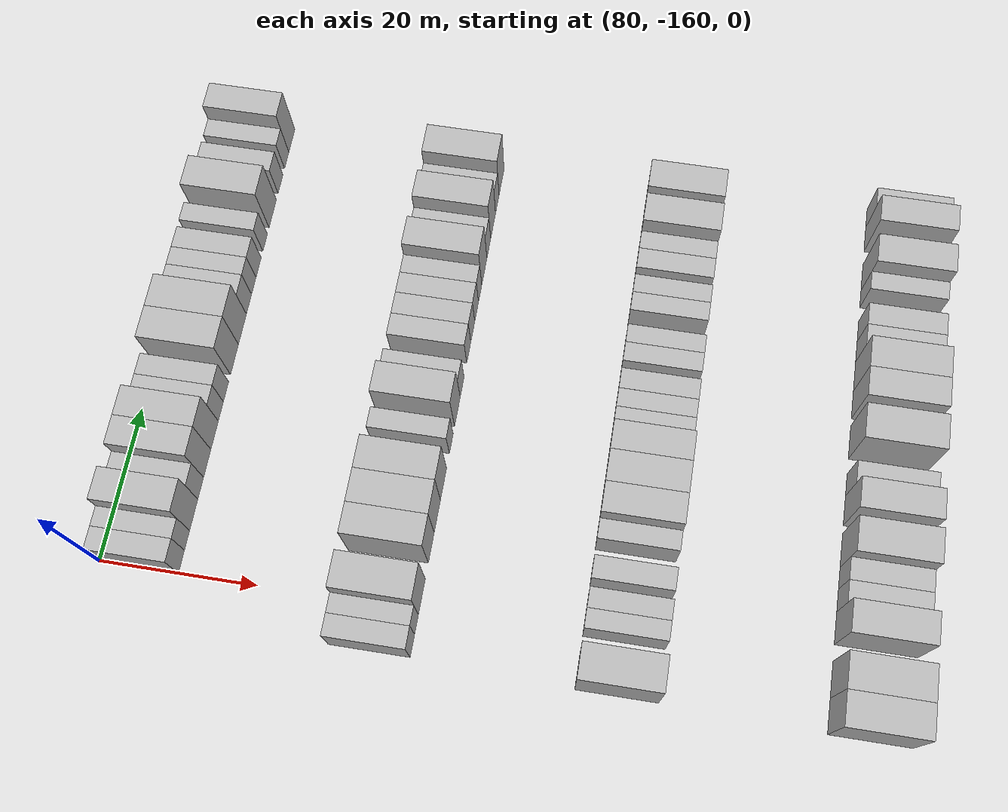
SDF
<sdf version="1.6">
 <world name="default">
  <model name="building_535">
   <static>1</static>
   <pose>85.0000 -158.5072 0 0.000000 0.000000 0.000000</pose>
   <link name="link">
    <pose>0 0 3.00 0 0 0</pose>
    <collision name="collision"><geometry><box><size>10.0000 2.9138 6.0000</size></box></geometry></collision>
    <visual name="visual">
     <cast_shadows>0</cast_shadows>
     <geometry><box><size>10.0000 2.9138 6.0000</size></box></geometry>
     <material>
      <script>
       <uri>model://HANNAS_wall/materials/scripts</uri>
       <uri>model://HANNAS_wall/materials/textures</uri>
       <name>vrc/HANNAS_wall</name>
      </script>
     </material>
    </visual>
   </link>
  </model>
  <model name="building_536">
   <static>1</static>
   <pose>85.0000 -155.7948 0 0.000000 0.000000 0.000000</pose>
   <link name="link">
    <pose>0 0 3.00 0 0 0</pose>
    <collision name="collision"><geometry><box><size>10.0000 2.5110 6.0000</size></box></geometry></collision>
    <visual name="visual">
     <cast_shadows>0</cast_shadows>
     <geometry><box><size>10.0000 2.5110 6.0000</size></box></geometry>
     <material>
      <script>
       <uri>model://HANNAS_wall/materials/scripts</uri>
       <uri>model://HANNAS_wall/materials/textures</uri>
       <name>vrc/HANNAS_wall</name>
      </script>
     </material>
    </visual>
   </link>
  </model>
  <model name="building_537">
   <static>1</static>
   <pose>85.0000 -152.4979 0 0.000000 0.000000 0.000000</pose>
   <link name="link">
    <pose>0 0 4.50 0 0 0</pose>
    <collision name="collision"><geometry><box><size>10.0000 4.0827 9.0000</size></box></geometry></collision>
    <visual name="visual">
     <cast_shadows>0</cast_shadows>
     <geometry><box><size>10.0000 4.0827 9.0000</size></box></geometry>
     <material>
      <script>
       <uri>model://HANNAS_wall/materials/scripts</uri>
       <uri>model://HANNAS_wall/materials/textures</uri>
       <name>vrc/HANNAS_wall</name>
      </script>
     </material>
    </visual>
   </link>
  </model>
  <model name="building_538">
   <static>1</static>
   <pose>85.0000 -149.0277 0 0.000000 0.000000 0.000000</pose>
   <link name="link">
    <pose>0 0 3.00 0 0 0</pose>
    <collision name="collision"><geometry><box><size>10.0000 2.8578 6.0000</size></box></geometry></collision>
    <visual name="visual">
     <cast_shadows>0</cast_shadows>
     <geometry><box><size>10.0000 2.8578 6.0000</size></box></geometry>
     <material>
      <script>
       <uri>model://HANNAS_wall/materials/scripts</uri>
       <uri>model://HANNAS_wall/materials/textures</uri>
       <name>vrc/HANNAS_wall</name>
      </script>
     </material>
    </visual>
   </link>
  </model>
  <model name="building_539">
   <static>1</static>
   <pose>85.0000 -145.7312 0 0.000000 0.000000 0.000000</pose>
   <link name="link">
    <pose>0 0 4.50 0 0 0</pose>
    <collision name="collision"><geometry><box><size>10.0000 3.7350 9.0000</size></box></geometry></collision>
    <visual name="visual">
     <cast_shadows>0</cast_shadows>
     <geometry><box><size>10.0000 3.7350 9.0000</size></box></geometry>
     <material>
      <script>
       <uri>model://HANNAS_wall/materials/scripts</uri>
       <uri>model://HANNAS_wall/materials/textures</uri>
       <name>vrc/HANNAS_wall</name>
      </script>
     </material>
    </visual>
   </link>
  </model>
  <model name="building_540">
   <static>1</static>
   <pose>85.0000 -141.9311 0 0.000000 0.000000 0.000000</pose>
   <link name="link">
    <pose>0 0 4.50 0 0 0</pose>
    <collision name="collision"><geometry><box><size>10.0000 3.8652 9.0000</size></box></geometry></collision>
    <visual name="visual">
     <cast_shadows>0</cast_shadows>
     <geometry><box><size>10.0000 3.8652 9.0000</size></box></geometry>
     <material>
      <script>
       <uri>model://HANNAS_wall/materials/scripts</uri>
       <uri>model://HANNAS_wall/materials/textures</uri>
       <name>vrc/HANNAS_wall</name>
      </script>
     </material>
    </visual>
   </link>
  </model>
  <model name="building_541">
   <static>1</static>
   <pose>85.0000 -138.6671 0 0.000000 0.000000 0.000000</pose>
   <link name="link">
    <pose>0 0 3.00 0 0 0</pose>
    <collision name="collision"><geometry><box><size>10.0000 2.6629 6.0000</size></box></geometry></collision>
    <visual name="visual">
     <cast_shadows>0</cast_shadows>
     <geometry><box><size>10.0000 2.6629 6.0000</size></box></geometry>
     <material>
      <script>
       <uri>model://HANNAS_wall/materials/scripts</uri>
       <uri>model://HANNAS_wall/materials/textures</uri>
       <name>vrc/HANNAS_wall</name>
      </script>
     </material>
    </visual>
   </link>
  </model>
  <model name="building_542">
   <static>1</static>
   <pose>85.0000 -135.9375 0 0.000000 0.000000 0.000000</pose>
   <link name="link">
    <pose>0 0 3.00 0 0 0</pose>
    <collision name="collision"><geometry><box><size>10.0000 2.7964 6.0000</size></box></geometry></collision>
    <visual name="visual">
     <cast_shadows>0</cast_shadows>
     <geometry><box><size>10.0000 2.7964 6.0000</size></box></geometry>
     <material>
      <script>
       <uri>model://HANNAS_wall/materials/scripts</uri>
       <uri>model://HANNAS_wall/materials/textures</uri>
       <name>vrc/HANNAS_wall</name>
      </script>
     </material>
    </visual>
   </link>
  </model>
  <model name="building_543">
   <static>1</static>
   <pose>85.0000 -131.3920 0 0.000000 0.000000 0.000000</pose>
   <link name="link">
    <pose>0 0 4.50 0 0 0</pose>
    <collision name="collision"><geometry><box><size>10.0000 4.2945 9.0000</size></box></geometry></collision>
    <visual name="visual">
     <cast_shadows>0</cast_shadows>
     <geometry><box><size>10.0000 4.2945 9.0000</size></box></geometry>
     <material>
      <script>
       <uri>model://HANNAS_wall/materials/scripts</uri>
       <uri>model://HANNAS_wall/materials/textures</uri>
       <name>vrc/HANNAS_wall</name>
      </script>
     </material>
    </visual>
   </link>
  </model>
  <model name="building_544">
   <static>1</static>
   <pose>85.0000 -127.0500 0 0.000000 0.000000 0.000000</pose>
   <link name="link">
    <pose>0 0 4.50 0 0 0</pose>
    <collision name="collision"><geometry><box><size>10.0000 4.3894 9.0000</size></box></geometry></collision>
    <visual name="visual">
     <cast_shadows>0</cast_shadows>
     <geometry><box><size>10.0000 4.3894 9.0000</size></box></geometry>
     <material>
      <script>
       <uri>model://HANNAS_wall/materials/scripts</uri>
       <uri>model://HANNAS_wall/materials/textures</uri>
       <name>vrc/HANNAS_wall</name>
      </script>
     </material>
    </visual>
   </link>
  </model>
  <model name="building_545">
   <static>1</static>
   <pose>85.0000 -123.4032 0 0.000000 0.000000 0.000000</pose>
   <link name="link">
    <pose>0 0 3.00 0 0 0</pose>
    <collision name="collision"><geometry><box><size>10.0000 2.9044 6.0000</size></box></geometry></collision>
    <visual name="visual">
     <cast_shadows>0</cast_shadows>
     <geometry><box><size>10.0000 2.9044 6.0000</size></box></geometry>
     <material>
      <script>
       <uri>model://HANNAS_wall/materials/scripts</uri>
       <uri>model://HANNAS_wall/materials/textures</uri>
       <name>vrc/HANNAS_wall</name>
      </script>
     </material>
    </visual>
   </link>
  </model>
  <model name="building_546">
   <static>1</static>
   <pose>85.0000 -120.6891 0 0.000000 0.000000 0.000000</pose>
   <link name="link">
    <pose>0 0 3.00 0 0 0</pose>
    <collision name="collision"><geometry><box><size>10.0000 2.5237 6.0000</size></box></geometry></collision>
    <visual name="visual">
     <cast_shadows>0</cast_shadows>
     <geometry><box><size>10.0000 2.5237 6.0000</size></box></geometry>
     <material>
      <script>
       <uri>model://HANNAS_wall/materials/scripts</uri>
       <uri>model://HANNAS_wall/materials/textures</uri>
       <name>vrc/HANNAS_wall</name>
      </script>
     </material>
    </visual>
   </link>
  </model>
  <model name="building_547">
   <static>1</static>
   <pose>85.0000 -117.9544 0 0.000000 0.000000 0.000000</pose>
   <link name="link">
    <pose>0 0 3.00 0 0 0</pose>
    <collision name="collision"><geometry><box><size>10.0000 2.9457 6.0000</size></box></geometry></collision>
    <visual name="visual">
     <cast_shadows>0</cast_shadows>
     <geometry><box><size>10.0000 2.9457 6.0000</size></box></geometry>
     <material>
      <script>
       <uri>model://HANNAS_wall/materials/scripts</uri>
       <uri>model://HANNAS_wall/materials/textures</uri>
       <name>vrc/HANNAS_wall</name>
      </script>
     </material>
    </visual>
   </link>
  </model>
  <model name="building_548">
   <static>1</static>
   <pose>85.0000 -114.1785 0 0.000000 0.000000 0.000000</pose>
   <link name="link">
    <pose>0 0 3.00 0 0 0</pose>
    <collision name="collision"><geometry><box><size>10.0000 2.6060 6.0000</size></box></geometry></collision>
    <visual name="visual">
     <cast_shadows>0</cast_shadows>
     <geometry><box><size>10.0000 2.6060 6.0000</size></box></geometry>
     <material>
      <script>
       <uri>model://HANNAS_wall/materials/scripts</uri>
       <uri>model://HANNAS_wall/materials/textures</uri>
       <name>vrc/HANNAS_wall</name>
      </script>
     </material>
    </visual>
   </link>
  </model>
  <model name="building_549">
   <static>1</static>
   <pose>85.0000 -109.6983 0 0.000000 0.000000 0.000000</pose>
   <link name="link">
    <pose>0 0 4.50 0 0 0</pose>
    <collision name="collision"><geometry><box><size>10.0000 4.3545 9.0000</size></box></geometry></collision>
    <visual name="visual">
     <cast_shadows>0</cast_shadows>
     <geometry><box><size>10.0000 4.3545 9.0000</size></box></geometry>
     <material>
      <script>
       <uri>model://HANNAS_wall/materials/scripts</uri>
       <uri>model://HANNAS_wall/materials/textures</uri>
       <name>vrc/HANNAS_wall</name>
      </script>
     </material>
    </visual>
   </link>
  </model>
  <model name="building_550">
   <static>1</static>
   <pose>85.0000 -105.0601 0 0.000000 0.000000 0.000000</pose>
   <link name="link">
    <pose>0 0 3.00 0 0 0</pose>
    <collision name="collision"><geometry><box><size>10.0000 2.9219 6.0000</size></box></geometry></collision>
    <visual name="visual">
     <cast_shadows>0</cast_shadows>
     <geometry><box><size>10.0000 2.9219 6.0000</size></box></geometry>
     <material>
      <script>
       <uri>model://HANNAS_wall/materials/scripts</uri>
       <uri>model://HANNAS_wall/materials/textures</uri>
       <name>vrc/HANNAS_wall</name>
      </script>
     </material>
    </visual>
   </link>
  </model>
  <model name="building_551">
   <static>1</static>
   <pose>85.0000 -101.2850 0 0.000000 0.000000 0.000000</pose>
   <link name="link">
    <pose>0 0 3.00 0 0 0</pose>
    <collision name="collision"><geometry><box><size>10.0000 2.6282 6.0000</size></box></geometry></collision>
    <visual name="visual">
     <cast_shadows>0</cast_shadows>
     <geometry><box><size>10.0000 2.6282 6.0000</size></box></geometry>
     <material>
      <script>
       <uri>model://HANNAS_wall/materials/scripts</uri>
       <uri>model://HANNAS_wall/materials/textures</uri>
       <name>vrc/HANNAS_wall</name>
      </script>
     </material>
    </visual>
   </link>
  </model>
  <model name="building_552">
   <static>1</static>
   <pose>85.0000 -98.1222 0 0.000000 0.000000 0.000000</pose>
   <link name="link">
    <pose>0 0 4.50 0 0 0</pose>
    <collision name="collision"><geometry><box><size>10.0000 3.6974 9.0000</size></box></geometry></collision>
    <visual name="visual">
     <cast_shadows>0</cast_shadows>
     <geometry><box><size>10.0000 3.6974 9.0000</size></box></geometry>
     <material>
      <script>
       <uri>model://HANNAS_wall/materials/scripts</uri>
       <uri>model://HANNAS_wall/materials/textures</uri>
       <name>vrc/HANNAS_wall</name>
      </script>
     </material>
    </visual>
   </link>
  </model>
  <model name="building_766">
   <static>1</static>
   <pose>115.0000 -164.1862 0 0.000000 0.000000 0.000000</pose>
   <link name="link">
    <pose>0 0 3.00 0 0 0</pose>
    <collision name="collision"><geometry><box><size>10.0000 2.7592 6.0000</size></box></geometry></collision>
    <visual name="visual">
     <cast_shadows>0</cast_shadows>
     <geometry><box><size>10.0000 2.7592 6.0000</size></box></geometry>
     <material>
      <script>
       <uri>model://HANNAS_wall/materials/scripts</uri>
       <uri>model://HANNAS_wall/materials/textures</uri>
       <name>vrc/HANNAS_wall</name>
      </script>
     </material>
    </visual>
   </link>
  </model>
  <model name="building_767">
   <static>1</static>
   <pose>115.0000 -161.5995 0 0.000000 0.000000 0.000000</pose>
   <link name="link">
    <pose>0 0 3.00 0 0 0</pose>
    <collision name="collision"><geometry><box><size>10.0000 2.4142 6.0000</size></box></geometry></collision>
    <visual name="visual">
     <cast_shadows>0</cast_shadows>
     <geometry><box><size>10.0000 2.4142 6.0000</size></box></geometry>
     <material>
      <script>
       <uri>model://HANNAS_wall/materials/scripts</uri>
       <uri>model://HANNAS_wall/materials/textures</uri>
       <name>vrc/HANNAS_wall</name>
      </script>
     </material>
    </visual>
   </link>
  </model>
  <model name="building_768">
   <static>1</static>
   <pose>115.0000 -158.1685 0 0.000000 0.000000 0.000000</pose>
   <link name="link">
    <pose>0 0 4.50 0 0 0</pose>
    <collision name="collision"><geometry><box><size>10.0000 4.4480 9.0000</size></box></geometry></collision>
    <visual name="visual">
     <cast_shadows>0</cast_shadows>
     <geometry><box><size>10.0000 4.4480 9.0000</size></box></geometry>
     <material>
      <script>
       <uri>model://HANNAS_wall/materials/scripts</uri>
       <uri>model://HANNAS_wall/materials/textures</uri>
       <name>vrc/HANNAS_wall</name>
      </script>
     </material>
    </visual>
   </link>
  </model>
  <model name="building_769">
   <static>1</static>
   <pose>115.0000 -152.0086 0 0.000000 0.000000 0.000000</pose>
   <link name="link">
    <pose>0 0 4.50 0 0 0</pose>
    <collision name="collision"><geometry><box><size>10.0000 3.8717 9.0000</size></box></geometry></collision>
    <visual name="visual">
     <cast_shadows>0</cast_shadows>
     <geometry><box><size>10.0000 3.8717 9.0000</size></box></geometry>
     <material>
      <script>
       <uri>model://HANNAS_wall/materials/scripts</uri>
       <uri>model://HANNAS_wall/materials/textures</uri>
       <name>vrc/HANNAS_wall</name>
      </script>
     </material>
    </visual>
   </link>
  </model>
  <model name="building_770">
   <static>1</static>
   <pose>115.0000 -147.9625 0 0.000000 0.000000 0.000000</pose>
   <link name="link">
    <pose>0 0 4.50 0 0 0</pose>
    <collision name="collision"><geometry><box><size>10.0000 4.2205 9.0000</size></box></geometry></collision>
    <visual name="visual">
     <cast_shadows>0</cast_shadows>
     <geometry><box><size>10.0000 4.2205 9.0000</size></box></geometry>
     <material>
      <script>
       <uri>model://HANNAS_wall/materials/scripts</uri>
       <uri>model://HANNAS_wall/materials/textures</uri>
       <name>vrc/HANNAS_wall</name>
      </script>
     </material>
    </visual>
   </link>
  </model>
  <model name="building_771">
   <static>1</static>
   <pose>115.0000 -143.7628 0 0.000000 0.000000 0.000000</pose>
   <link name="link">
    <pose>0 0 4.50 0 0 0</pose>
    <collision name="collision"><geometry><box><size>10.0000 4.1790 9.0000</size></box></geometry></collision>
    <visual name="visual">
     <cast_shadows>0</cast_shadows>
     <geometry><box><size>10.0000 4.1790 9.0000</size></box></geometry>
     <material>
      <script>
       <uri>model://HANNAS_wall/materials/scripts</uri>
       <uri>model://HANNAS_wall/materials/textures</uri>
       <name>vrc/HANNAS_wall</name>
      </script>
     </material>
    </visual>
   </link>
  </model>
  <model name="building_772">
   <static>1</static>
   <pose>115.0000 -138.3508 0 0.000000 0.000000 0.000000</pose>
   <link name="link">
    <pose>0 0 3.00 0 0 0</pose>
    <collision name="collision"><geometry><box><size>10.0000 2.6451 6.0000</size></box></geometry></collision>
    <visual name="visual">
     <cast_shadows>0</cast_shadows>
     <geometry><box><size>10.0000 2.6451 6.0000</size></box></geometry>
     <material>
      <script>
       <uri>model://HANNAS_wall/materials/scripts</uri>
       <uri>model://HANNAS_wall/materials/textures</uri>
       <name>vrc/HANNAS_wall</name>
      </script>
     </material>
    </visual>
   </link>
  </model>
  <model name="building_773">
   <static>1</static>
   <pose>115.0000 -134.0194 0 0.000000 0.000000 0.000000</pose>
   <link name="link">
    <pose>0 0 4.50 0 0 0</pose>
    <collision name="collision"><geometry><box><size>10.0000 4.0176 9.0000</size></box></geometry></collision>
    <visual name="visual">
     <cast_shadows>0</cast_shadows>
     <geometry><box><size>10.0000 4.0176 9.0000</size></box></geometry>
     <material>
      <script>
       <uri>model://HANNAS_wall/materials/scripts</uri>
       <uri>model://HANNAS_wall/materials/textures</uri>
       <name>vrc/HANNAS_wall</name>
      </script>
     </material>
    </visual>
   </link>
  </model>
  <model name="building_774">
   <static>1</static>
   <pose>115.0000 -130.5886 0 0.000000 0.000000 0.000000</pose>
   <link name="link">
    <pose>0 0 3.00 0 0 0</pose>
    <collision name="collision"><geometry><box><size>10.0000 2.8439 6.0000</size></box></geometry></collision>
    <visual name="visual">
     <cast_shadows>0</cast_shadows>
     <geometry><box><size>10.0000 2.8439 6.0000</size></box></geometry>
     <material>
      <script>
       <uri>model://HANNAS_wall/materials/scripts</uri>
       <uri>model://HANNAS_wall/materials/textures</uri>
       <name>vrc/HANNAS_wall</name>
      </script>
     </material>
    </visual>
   </link>
  </model>
  <model name="building_775">
   <static>1</static>
   <pose>115.0000 -125.6881 0 0.000000 0.000000 0.000000</pose>
   <link name="link">
    <pose>0 0 3.00 0 0 0</pose>
    <collision name="collision"><geometry><box><size>10.0000 2.9572 6.0000</size></box></geometry></collision>
    <visual name="visual">
     <cast_shadows>0</cast_shadows>
     <geometry><box><size>10.0000 2.9572 6.0000</size></box></geometry>
     <material>
      <script>
       <uri>model://HANNAS_wall/materials/scripts</uri>
       <uri>model://HANNAS_wall/materials/textures</uri>
       <name>vrc/HANNAS_wall</name>
      </script>
     </material>
    </visual>
   </link>
  </model>
  <model name="building_776">
   <static>1</static>
   <pose>115.0000 -122.7307 0 0.000000 0.000000 0.000000</pose>
   <link name="link">
    <pose>0 0 3.00 0 0 0</pose>
    <collision name="collision"><geometry><box><size>10.0000 2.9577 6.0000</size></box></geometry></collision>
    <visual name="visual">
     <cast_shadows>0</cast_shadows>
     <geometry><box><size>10.0000 2.9577 6.0000</size></box></geometry>
     <material>
      <script>
       <uri>model://HANNAS_wall/materials/scripts</uri>
       <uri>model://HANNAS_wall/materials/textures</uri>
       <name>vrc/HANNAS_wall</name>
      </script>
     </material>
    </visual>
   </link>
  </model>
  <model name="building_777">
   <static>1</static>
   <pose>115.0000 -119.8198 0 0.000000 0.000000 0.000000</pose>
   <link name="link">
    <pose>0 0 3.00 0 0 0</pose>
    <collision name="collision"><geometry><box><size>10.0000 2.8641 6.0000</size></box></geometry></collision>
    <visual name="visual">
     <cast_shadows>0</cast_shadows>
     <geometry><box><size>10.0000 2.8641 6.0000</size></box></geometry>
     <material>
      <script>
       <uri>model://HANNAS_wall/materials/scripts</uri>
       <uri>model://HANNAS_wall/materials/textures</uri>
       <name>vrc/HANNAS_wall</name>
      </script>
     </material>
    </visual>
   </link>
  </model>
  <model name="building_778">
   <static>1</static>
   <pose>115.0000 -117.1265 0 0.000000 0.000000 0.000000</pose>
   <link name="link">
    <pose>0 0 3.00 0 0 0</pose>
    <collision name="collision"><geometry><box><size>10.0000 2.5224 6.0000</size></box></geometry></collision>
    <visual name="visual">
     <cast_shadows>0</cast_shadows>
     <geometry><box><size>10.0000 2.5224 6.0000</size></box></geometry>
     <material>
      <script>
       <uri>model://HANNAS_wall/materials/scripts</uri>
       <uri>model://HANNAS_wall/materials/textures</uri>
       <name>vrc/HANNAS_wall</name>
      </script>
     </material>
    </visual>
   </link>
  </model>
  <model name="building_779">
   <static>1</static>
   <pose>115.0000 -113.8625 0 0.000000 0.000000 0.000000</pose>
   <link name="link">
    <pose>0 0 4.50 0 0 0</pose>
    <collision name="collision"><geometry><box><size>10.0000 4.0056 9.0000</size></box></geometry></collision>
    <visual name="visual">
     <cast_shadows>0</cast_shadows>
     <geometry><box><size>10.0000 4.0056 9.0000</size></box></geometry>
     <material>
      <script>
       <uri>model://HANNAS_wall/materials/scripts</uri>
       <uri>model://HANNAS_wall/materials/textures</uri>
       <name>vrc/HANNAS_wall</name>
      </script>
     </material>
    </visual>
   </link>
  </model>
  <model name="building_780">
   <static>1</static>
   <pose>115.0000 -110.3740 0 0.000000 0.000000 0.000000</pose>
   <link name="link">
    <pose>0 0 3.00 0 0 0</pose>
    <collision name="collision"><geometry><box><size>10.0000 2.9715 6.0000</size></box></geometry></collision>
    <visual name="visual">
     <cast_shadows>0</cast_shadows>
     <geometry><box><size>10.0000 2.9715 6.0000</size></box></geometry>
     <material>
      <script>
       <uri>model://HANNAS_wall/materials/scripts</uri>
       <uri>model://HANNAS_wall/materials/textures</uri>
       <name>vrc/HANNAS_wall</name>
      </script>
     </material>
    </visual>
   </link>
  </model>
  <model name="building_781">
   <static>1</static>
   <pose>115.0000 -106.9439 0 0.000000 0.000000 0.000000</pose>
   <link name="link">
    <pose>0 0 4.50 0 0 0</pose>
    <collision name="collision"><geometry><box><size>10.0000 3.8886 9.0000</size></box></geometry></collision>
    <visual name="visual">
     <cast_shadows>0</cast_shadows>
     <geometry><box><size>10.0000 3.8886 9.0000</size></box></geometry>
     <material>
      <script>
       <uri>model://HANNAS_wall/materials/scripts</uri>
       <uri>model://HANNAS_wall/materials/textures</uri>
       <name>vrc/HANNAS_wall</name>
      </script>
     </material>
    </visual>
   </link>
  </model>
  <model name="building_782">
   <static>1</static>
   <pose>115.0000 -103.5748 0 0.000000 0.000000 0.000000</pose>
   <link name="link">
    <pose>0 0 3.00 0 0 0</pose>
    <collision name="collision"><geometry><box><size>10.0000 2.8497 6.0000</size></box></geometry></collision>
    <visual name="visual">
     <cast_shadows>0</cast_shadows>
     <geometry><box><size>10.0000 2.8497 6.0000</size></box></geometry>
     <material>
      <script>
       <uri>model://HANNAS_wall/materials/scripts</uri>
       <uri>model://HANNAS_wall/materials/textures</uri>
       <name>vrc/HANNAS_wall</name>
      </script>
     </material>
    </visual>
   </link>
  </model>
  <model name="building_783">
   <static>1</static>
   <pose>115.0000 -100.0939 0 0.000000 0.000000 0.000000</pose>
   <link name="link">
    <pose>0 0 4.50 0 0 0</pose>
    <collision name="collision"><geometry><box><size>10.0000 4.1121 9.0000</size></box></geometry></collision>
    <visual name="visual">
     <cast_shadows>0</cast_shadows>
     <geometry><box><size>10.0000 4.1121 9.0000</size></box></geometry>
     <material>
      <script>
       <uri>model://HANNAS_wall/materials/scripts</uri>
       <uri>model://HANNAS_wall/materials/textures</uri>
       <name>vrc/HANNAS_wall</name>
      </script>
     </material>
    </visual>
   </link>
  </model>
  <model name="building_986">
   <static>1</static>
   <pose>145.0000 -164.0540 0 0.000000 0.000000 0.000000</pose>
   <link name="link">
    <pose>0 0 4.50 0 0 0</pose>
    <collision name="collision"><geometry><box><size>10.0000 4.3704 9.0000</size></box></geometry></collision>
    <visual name="visual">
     <cast_shadows>0</cast_shadows>
     <geometry><box><size>10.0000 4.3704 9.0000</size></box></geometry>
     <material>
      <script>
       <uri>model://HANNAS_wall/materials/scripts</uri>
       <uri>model://HANNAS_wall/materials/textures</uri>
       <name>vrc/HANNAS_wall</name>
      </script>
     </material>
    </visual>
   </link>
  </model>
  <model name="building_987">
   <static>1</static>
   <pose>145.0000 -158.6610 0 0.000000 0.000000 0.000000</pose>
   <link name="link">
    <pose>0 0 3.00 0 0 0</pose>
    <collision name="collision"><geometry><box><size>10.0000 2.4157 6.0000</size></box></geometry></collision>
    <visual name="visual">
     <cast_shadows>0</cast_shadows>
     <geometry><box><size>10.0000 2.4157 6.0000</size></box></geometry>
     <material>
      <script>
       <uri>model://HANNAS_wall/materials/scripts</uri>
       <uri>model://HANNAS_wall/materials/textures</uri>
       <name>vrc/HANNAS_wall</name>
      </script>
     </material>
    </visual>
   </link>
  </model>
  <model name="building_988">
   <static>1</static>
   <pose>145.0000 -156.1902 0 0.000000 0.000000 0.000000</pose>
   <link name="link">
    <pose>0 0 3.00 0 0 0</pose>
    <collision name="collision"><geometry><box><size>10.0000 2.5257 6.0000</size></box></geometry></collision>
    <visual name="visual">
     <cast_shadows>0</cast_shadows>
     <geometry><box><size>10.0000 2.5257 6.0000</size></box></geometry>
     <material>
      <script>
       <uri>model://HANNAS_wall/materials/scripts</uri>
       <uri>model://HANNAS_wall/materials/textures</uri>
       <name>vrc/HANNAS_wall</name>
      </script>
     </material>
    </visual>
   </link>
  </model>
  <model name="building_989">
   <static>1</static>
   <pose>145.0000 -152.5129 0 0.000000 0.000000 0.000000</pose>
   <link name="link">
    <pose>0 0 3.00 0 0 0</pose>
    <collision name="collision"><geometry><box><size>10.0000 2.8289 6.0000</size></box></geometry></collision>
    <visual name="visual">
     <cast_shadows>0</cast_shadows>
     <geometry><box><size>10.0000 2.8289 6.0000</size></box></geometry>
     <material>
      <script>
       <uri>model://HANNAS_wall/materials/scripts</uri>
       <uri>model://HANNAS_wall/materials/textures</uri>
       <name>vrc/HANNAS_wall</name>
      </script>
     </material>
    </visual>
   </link>
  </model>
  <model name="building_990">
   <static>1</static>
   <pose>145.0000 -147.8416 0 0.000000 0.000000 0.000000</pose>
   <link name="link">
    <pose>0 0 3.00 0 0 0</pose>
    <collision name="collision"><geometry><box><size>10.0000 2.5139 6.0000</size></box></geometry></collision>
    <visual name="visual">
     <cast_shadows>0</cast_shadows>
     <geometry><box><size>10.0000 2.5139 6.0000</size></box></geometry>
     <material>
      <script>
       <uri>model://HANNAS_wall/materials/scripts</uri>
       <uri>model://HANNAS_wall/materials/textures</uri>
       <name>vrc/HANNAS_wall</name>
      </script>
     </material>
    </visual>
   </link>
  </model>
  <model name="building_991">
   <static>1</static>
   <pose>145.0000 -144.6636 0 0.000000 0.000000 0.000000</pose>
   <link name="link">
    <pose>0 0 4.50 0 0 0</pose>
    <collision name="collision"><geometry><box><size>10.0000 3.8421 9.0000</size></box></geometry></collision>
    <visual name="visual">
     <cast_shadows>0</cast_shadows>
     <geometry><box><size>10.0000 3.8421 9.0000</size></box></geometry>
     <material>
      <script>
       <uri>model://HANNAS_wall/materials/scripts</uri>
       <uri>model://HANNAS_wall/materials/textures</uri>
       <name>vrc/HANNAS_wall</name>
      </script>
     </material>
    </visual>
   </link>
  </model>
  <model name="building_992">
   <static>1</static>
   <pose>145.0000 -140.7213 0 0.000000 0.000000 0.000000</pose>
   <link name="link">
    <pose>0 0 4.50 0 0 0</pose>
    <collision name="collision"><geometry><box><size>10.0000 4.0425 9.0000</size></box></geometry></collision>
    <visual name="visual">
     <cast_shadows>0</cast_shadows>
     <geometry><box><size>10.0000 4.0425 9.0000</size></box></geometry>
     <material>
      <script>
       <uri>model://HANNAS_wall/materials/scripts</uri>
       <uri>model://HANNAS_wall/materials/textures</uri>
       <name>vrc/HANNAS_wall</name>
      </script>
     </material>
    </visual>
   </link>
  </model>
  <model name="building_993">
   <static>1</static>
   <pose>145.0000 -136.8151 0 0.000000 0.000000 0.000000</pose>
   <link name="link">
    <pose>0 0 4.50 0 0 0</pose>
    <collision name="collision"><geometry><box><size>10.0000 3.7699 9.0000</size></box></geometry></collision>
    <visual name="visual">
     <cast_shadows>0</cast_shadows>
     <geometry><box><size>10.0000 3.7699 9.0000</size></box></geometry>
     <material>
      <script>
       <uri>model://HANNAS_wall/materials/scripts</uri>
       <uri>model://HANNAS_wall/materials/textures</uri>
       <name>vrc/HANNAS_wall</name>
      </script>
     </material>
    </visual>
   </link>
  </model>
  <model name="building_994">
   <static>1</static>
   <pose>145.0000 -133.5557 0 0.000000 0.000000 0.000000</pose>
   <link name="link">
    <pose>0 0 3.00 0 0 0</pose>
    <collision name="collision"><geometry><box><size>10.0000 2.7488 6.0000</size></box></geometry></collision>
    <visual name="visual">
     <cast_shadows>0</cast_shadows>
     <geometry><box><size>10.0000 2.7488 6.0000</size></box></geometry>
     <material>
      <script>
       <uri>model://HANNAS_wall/materials/scripts</uri>
       <uri>model://HANNAS_wall/materials/textures</uri>
       <name>vrc/HANNAS_wall</name>
      </script>
     </material>
    </visual>
   </link>
  </model>
  <model name="building_995">
   <static>1</static>
   <pose>145.0000 -130.9614 0 0.000000 0.000000 0.000000</pose>
   <link name="link">
    <pose>0 0 3.00 0 0 0</pose>
    <collision name="collision"><geometry><box><size>10.0000 2.4399 6.0000</size></box></geometry></collision>
    <visual name="visual">
     <cast_shadows>0</cast_shadows>
     <geometry><box><size>10.0000 2.4399 6.0000</size></box></geometry>
     <material>
      <script>
       <uri>model://HANNAS_wall/materials/scripts</uri>
       <uri>model://HANNAS_wall/materials/textures</uri>
       <name>vrc/HANNAS_wall</name>
      </script>
     </material>
    </visual>
   </link>
  </model>
  <model name="building_996">
   <static>1</static>
   <pose>145.0000 -128.3869 0 0.000000 0.000000 0.000000</pose>
   <link name="link">
    <pose>0 0 3.00 0 0 0</pose>
    <collision name="collision"><geometry><box><size>10.0000 2.7090 6.0000</size></box></geometry></collision>
    <visual name="visual">
     <cast_shadows>0</cast_shadows>
     <geometry><box><size>10.0000 2.7090 6.0000</size></box></geometry>
     <material>
      <script>
       <uri>model://HANNAS_wall/materials/scripts</uri>
       <uri>model://HANNAS_wall/materials/textures</uri>
       <name>vrc/HANNAS_wall</name>
      </script>
     </material>
    </visual>
   </link>
  </model>
  <model name="building_997">
   <static>1</static>
   <pose>145.0000 -124.7494 0 0.000000 0.000000 0.000000</pose>
   <link name="link">
    <pose>0 0 3.00 0 0 0</pose>
    <collision name="collision"><geometry><box><size>10.0000 2.5659 6.0000</size></box></geometry></collision>
    <visual name="visual">
     <cast_shadows>0</cast_shadows>
     <geometry><box><size>10.0000 2.5659 6.0000</size></box></geometry>
     <material>
      <script>
       <uri>model://HANNAS_wall/materials/scripts</uri>
       <uri>model://HANNAS_wall/materials/textures</uri>
       <name>vrc/HANNAS_wall</name>
      </script>
     </material>
    </visual>
   </link>
  </model>
  <model name="building_998">
   <static>1</static>
   <pose>145.0000 -122.2328 0 0.000000 0.000000 0.000000</pose>
   <link name="link">
    <pose>0 0 3.00 0 0 0</pose>
    <collision name="collision"><geometry><box><size>10.0000 2.4674 6.0000</size></box></geometry></collision>
    <visual name="visual">
     <cast_shadows>0</cast_shadows>
     <geometry><box><size>10.0000 2.4674 6.0000</size></box></geometry>
     <material>
      <script>
       <uri>model://HANNAS_wall/materials/scripts</uri>
       <uri>model://HANNAS_wall/materials/textures</uri>
       <name>vrc/HANNAS_wall</name>
      </script>
     </material>
    </visual>
   </link>
  </model>
  <model name="building_999">
   <static>1</static>
   <pose>145.0000 -117.7229 0 0.000000 0.000000 0.000000</pose>
   <link name="link">
    <pose>0 0 3.00 0 0 0</pose>
    <collision name="collision"><geometry><box><size>10.0000 2.5523 6.0000</size></box></geometry></collision>
    <visual name="visual">
     <cast_shadows>0</cast_shadows>
     <geometry><box><size>10.0000 2.5523 6.0000</size></box></geometry>
     <material>
      <script>
       <uri>model://HANNAS_wall/materials/scripts</uri>
       <uri>model://HANNAS_wall/materials/textures</uri>
       <name>vrc/HANNAS_wall</name>
      </script>
     </material>
    </visual>
   </link>
  </model>
  <model name="building_1000">
   <static>1</static>
   <pose>145.0000 -115.1941 0 0.000000 0.000000 0.000000</pose>
   <link name="link">
    <pose>0 0 3.00 0 0 0</pose>
    <collision name="collision"><geometry><box><size>10.0000 2.5055 6.0000</size></box></geometry></collision>
    <visual name="visual">
     <cast_shadows>0</cast_shadows>
     <geometry><box><size>10.0000 2.5055 6.0000</size></box></geometry>
     <material>
      <script>
       <uri>model://HANNAS_wall/materials/scripts</uri>
       <uri>model://HANNAS_wall/materials/textures</uri>
       <name>vrc/HANNAS_wall</name>
      </script>
     </material>
    </visual>
   </link>
  </model>
  <model name="building_1001">
   <static>1</static>
   <pose>145.0000 -111.5439 0 0.000000 0.000000 0.000000</pose>
   <link name="link">
    <pose>0 0 3.00 0 0 0</pose>
    <collision name="collision"><geometry><box><size>10.0000 2.7948 6.0000</size></box></geometry></collision>
    <visual name="visual">
     <cast_shadows>0</cast_shadows>
     <geometry><box><size>10.0000 2.7948 6.0000</size></box></geometry>
     <material>
      <script>
       <uri>model://HANNAS_wall/materials/scripts</uri>
       <uri>model://HANNAS_wall/materials/textures</uri>
       <name>vrc/HANNAS_wall</name>
      </script>
     </material>
    </visual>
   </link>
  </model>
  <model name="building_1002">
   <static>1</static>
   <pose>145.0000 -108.8980 0 0.000000 0.000000 0.000000</pose>
   <link name="link">
    <pose>0 0 3.00 0 0 0</pose>
    <collision name="collision"><geometry><box><size>10.0000 2.4970 6.0000</size></box></geometry></collision>
    <visual name="visual">
     <cast_shadows>0</cast_shadows>
     <geometry><box><size>10.0000 2.4970 6.0000</size></box></geometry>
     <material>
      <script>
       <uri>model://HANNAS_wall/materials/scripts</uri>
       <uri>model://HANNAS_wall/materials/textures</uri>
       <name>vrc/HANNAS_wall</name>
      </script>
     </material>
    </visual>
   </link>
  </model>
  <model name="building_1003">
   <static>1</static>
   <pose>145.0000 -105.6612 0 0.000000 0.000000 0.000000</pose>
   <link name="link">
    <pose>0 0 4.50 0 0 0</pose>
    <collision name="collision"><geometry><box><size>10.0000 3.9766 9.0000</size></box></geometry></collision>
    <visual name="visual">
     <cast_shadows>0</cast_shadows>
     <geometry><box><size>10.0000 3.9766 9.0000</size></box></geometry>
     <material>
      <script>
       <uri>model://HANNAS_wall/materials/scripts</uri>
       <uri>model://HANNAS_wall/materials/textures</uri>
       <name>vrc/HANNAS_wall</name>
      </script>
     </material>
    </visual>
   </link>
  </model>
  <model name="building_1004">
   <static>1</static>
   <pose>145.0000 -100.6697 0 0.000000 0.000000 0.000000</pose>
   <link name="link">
    <pose>0 0 4.50 0 0 0</pose>
    <collision name="collision"><geometry><box><size>10.0000 4.0064 9.0000</size></box></geometry></collision>
    <visual name="visual">
     <cast_shadows>0</cast_shadows>
     <geometry><box><size>10.0000 4.0064 9.0000</size></box></geometry>
     <material>
      <script>
       <uri>model://HANNAS_wall/materials/scripts</uri>
       <uri>model://HANNAS_wall/materials/textures</uri>
       <name>vrc/HANNAS_wall</name>
      </script>
     </material>
    </visual>
   </link>
  </model>
  <model name="building_1223">
   <static>1</static>
   <pose>175.0000 -164.6297 0 0.000000 0.000000 0.000000</pose>
   <link name="link">
    <pose>0 0 4.50 0 0 0</pose>
    <collision name="collision"><geometry><box><size>10.0000 4.2080 9.0000</size></box></geometry></collision>
    <visual name="visual">
     <cast_shadows>0</cast_shadows>
     <geometry><box><size>10.0000 4.2080 9.0000</size></box></geometry>
     <material>
      <script>
       <uri>model://HANNAS_wall/materials/scripts</uri>
       <uri>model://HANNAS_wall/materials/textures</uri>
       <name>vrc/HANNAS_wall</name>
      </script>
     </material>
    </visual>
   </link>
  </model>
  <model name="building_1224">
   <static>1</static>
   <pose>175.0000 -160.3388 0 0.000000 0.000000 0.000000</pose>
   <link name="link">
    <pose>0 0 4.50 0 0 0</pose>
    <collision name="collision"><geometry><box><size>10.0000 4.3737 9.0000</size></box></geometry></collision>
    <visual name="visual">
     <cast_shadows>0</cast_shadows>
     <geometry><box><size>10.0000 4.3737 9.0000</size></box></geometry>
     <material>
      <script>
       <uri>model://HANNAS_wall/materials/scripts</uri>
       <uri>model://HANNAS_wall/materials/textures</uri>
       <name>vrc/HANNAS_wall</name>
      </script>
     </material>
    </visual>
   </link>
  </model>
  <model name="building_1225">
   <static>1</static>
   <pose>175.0000 -154.1626 0 0.000000 0.000000 0.000000</pose>
   <link name="link">
    <pose>0 0 4.50 0 0 0</pose>
    <collision name="collision"><geometry><box><size>10.0000 3.9788 9.0000</size></box></geometry></collision>
    <visual name="visual">
     <cast_shadows>0</cast_shadows>
     <geometry><box><size>10.0000 3.9788 9.0000</size></box></geometry>
     <material>
      <script>
       <uri>model://HANNAS_wall/materials/scripts</uri>
       <uri>model://HANNAS_wall/materials/textures</uri>
       <name>vrc/HANNAS_wall</name>
      </script>
     </material>
    </visual>
   </link>
  </model>
  <model name="building_1226">
   <static>1</static>
   <pose>175.0000 -150.7834 0 0.000000 0.000000 0.000000</pose>
   <link name="link">
    <pose>0 0 3.00 0 0 0</pose>
    <collision name="collision"><geometry><box><size>10.0000 2.7796 6.0000</size></box></geometry></collision>
    <visual name="visual">
     <cast_shadows>0</cast_shadows>
     <geometry><box><size>10.0000 2.7796 6.0000</size></box></geometry>
     <material>
      <script>
       <uri>model://HANNAS_wall/materials/scripts</uri>
       <uri>model://HANNAS_wall/materials/textures</uri>
       <name>vrc/HANNAS_wall</name>
      </script>
     </material>
    </visual>
   </link>
  </model>
  <model name="building_1227">
   <static>1</static>
   <pose>175.0000 -148.0103 0 0.000000 0.000000 0.000000</pose>
   <link name="link">
    <pose>0 0 3.00 0 0 0</pose>
    <collision name="collision"><geometry><box><size>10.0000 2.7665 6.0000</size></box></geometry></collision>
    <visual name="visual">
     <cast_shadows>0</cast_shadows>
     <geometry><box><size>10.0000 2.7665 6.0000</size></box></geometry>
     <material>
      <script>
       <uri>model://HANNAS_wall/materials/scripts</uri>
       <uri>model://HANNAS_wall/materials/textures</uri>
       <name>vrc/HANNAS_wall</name>
      </script>
     </material>
    </visual>
   </link>
  </model>
  <model name="building_1228">
   <static>1</static>
   <pose>175.0000 -144.4624 0 0.000000 0.000000 0.000000</pose>
   <link name="link">
    <pose>0 0 4.50 0 0 0</pose>
    <collision name="collision"><geometry><box><size>10.0000 4.3293 9.0000</size></box></geometry></collision>
    <visual name="visual">
     <cast_shadows>0</cast_shadows>
     <geometry><box><size>10.0000 4.3293 9.0000</size></box></geometry>
     <material>
      <script>
       <uri>model://HANNAS_wall/materials/scripts</uri>
       <uri>model://HANNAS_wall/materials/textures</uri>
       <name>vrc/HANNAS_wall</name>
      </script>
     </material>
    </visual>
   </link>
  </model>
  <model name="building_1229">
   <static>1</static>
   <pose>175.0000 -139.3830 0 0.000000 0.000000 0.000000</pose>
   <link name="link">
    <pose>0 0 4.50 0 0 0</pose>
    <collision name="collision"><geometry><box><size>10.0000 3.8294 9.0000</size></box></geometry></collision>
    <visual name="visual">
     <cast_shadows>0</cast_shadows>
     <geometry><box><size>10.0000 3.8294 9.0000</size></box></geometry>
     <material>
      <script>
       <uri>model://HANNAS_wall/materials/scripts</uri>
       <uri>model://HANNAS_wall/materials/textures</uri>
       <name>vrc/HANNAS_wall</name>
      </script>
     </material>
    </visual>
   </link>
  </model>
  <model name="building_1230">
   <static>1</static>
   <pose>175.0000 -136.0120 0 0.000000 0.000000 0.000000</pose>
   <link name="link">
    <pose>0 0 3.00 0 0 0</pose>
    <collision name="collision"><geometry><box><size>10.0000 2.9127 6.0000</size></box></geometry></collision>
    <visual name="visual">
     <cast_shadows>0</cast_shadows>
     <geometry><box><size>10.0000 2.9127 6.0000</size></box></geometry>
     <material>
      <script>
       <uri>model://HANNAS_wall/materials/scripts</uri>
       <uri>model://HANNAS_wall/materials/textures</uri>
       <name>vrc/HANNAS_wall</name>
      </script>
     </material>
    </visual>
   </link>
  </model>
  <model name="building_1231">
   <static>1</static>
   <pose>175.0000 -130.3131 0 0.000000 0.000000 0.000000</pose>
   <link name="link">
    <pose>0 0 4.50 0 0 0</pose>
    <collision name="collision"><geometry><box><size>10.0000 4.4850 9.0000</size></box></geometry></collision>
    <visual name="visual">
     <cast_shadows>0</cast_shadows>
     <geometry><box><size>10.0000 4.4850 9.0000</size></box></geometry>
     <material>
      <script>
       <uri>model://HANNAS_wall/materials/scripts</uri>
       <uri>model://HANNAS_wall/materials/textures</uri>
       <name>vrc/HANNAS_wall</name>
      </script>
     </material>
    </visual>
   </link>
  </model>
  <model name="building_1232">
   <static>1</static>
   <pose>175.0000 -125.1632 0 0.000000 0.000000 0.000000</pose>
   <link name="link">
    <pose>0 0 4.50 0 0 0</pose>
    <collision name="collision"><geometry><box><size>10.0000 3.8148 9.0000</size></box></geometry></collision>
    <visual name="visual">
     <cast_shadows>0</cast_shadows>
     <geometry><box><size>10.0000 3.8148 9.0000</size></box></geometry>
     <material>
      <script>
       <uri>model://HANNAS_wall/materials/scripts</uri>
       <uri>model://HANNAS_wall/materials/textures</uri>
       <name>vrc/HANNAS_wall</name>
      </script>
     </material>
    </visual>
   </link>
  </model>
  <model name="building_1233">
   <static>1</static>
   <pose>175.0000 -121.2098 0 0.000000 0.000000 0.000000</pose>
   <link name="link">
    <pose>0 0 4.50 0 0 0</pose>
    <collision name="collision"><geometry><box><size>10.0000 4.0920 9.0000</size></box></geometry></collision>
    <visual name="visual">
     <cast_shadows>0</cast_shadows>
     <geometry><box><size>10.0000 4.0920 9.0000</size></box></geometry>
     <material>
      <script>
       <uri>model://HANNAS_wall/materials/scripts</uri>
       <uri>model://HANNAS_wall/materials/textures</uri>
       <name>vrc/HANNAS_wall</name>
      </script>
     </material>
    </visual>
   </link>
  </model>
  <model name="building_1234">
   <static>1</static>
   <pose>175.0000 -117.7162 0 0.000000 0.000000 0.000000</pose>
   <link name="link">
    <pose>0 0 3.00 0 0 0</pose>
    <collision name="collision"><geometry><box><size>10.0000 2.8953 6.0000</size></box></geometry></collision>
    <visual name="visual">
     <cast_shadows>0</cast_shadows>
     <geometry><box><size>10.0000 2.8953 6.0000</size></box></geometry>
     <material>
      <script>
       <uri>model://HANNAS_wall/materials/scripts</uri>
       <uri>model://HANNAS_wall/materials/textures</uri>
       <name>vrc/HANNAS_wall</name>
      </script>
     </material>
    </visual>
   </link>
  </model>
  <model name="building_1235">
   <static>1</static>
   <pose>175.0000 -114.7897 0 0.000000 0.000000 0.000000</pose>
   <link name="link">
    <pose>0 0 3.00 0 0 0</pose>
    <collision name="collision"><geometry><box><size>10.0000 2.9578 6.0000</size></box></geometry></collision>
    <visual name="visual">
     <cast_shadows>0</cast_shadows>
     <geometry><box><size>10.0000 2.9578 6.0000</size></box></geometry>
     <material>
      <script>
       <uri>model://HANNAS_wall/materials/scripts</uri>
       <uri>model://HANNAS_wall/materials/textures</uri>
       <name>vrc/HANNAS_wall</name>
      </script>
     </material>
    </visual>
   </link>
  </model>
  <model name="building_1236">
   <static>1</static>
   <pose>175.0000 -110.0687 0 0.000000 0.000000 0.000000</pose>
   <link name="link">
    <pose>0 0 3.00 0 0 0</pose>
    <collision name="collision"><geometry><box><size>10.0000 2.4842 6.0000</size></box></geometry></collision>
    <visual name="visual">
     <cast_shadows>0</cast_shadows>
     <geometry><box><size>10.0000 2.4842 6.0000</size></box></geometry>
     <material>
      <script>
       <uri>model://HANNAS_wall/materials/scripts</uri>
       <uri>model://HANNAS_wall/materials/textures</uri>
       <name>vrc/HANNAS_wall</name>
      </script>
     </material>
    </visual>
   </link>
  </model>
  <model name="building_1237">
   <static>1</static>
   <pose>175.0000 -106.8764 0 0.000000 0.000000 0.000000</pose>
   <link name="link">
    <pose>0 0 4.50 0 0 0</pose>
    <collision name="collision"><geometry><box><size>10.0000 3.9004 9.0000</size></box></geometry></collision>
    <visual name="visual">
     <cast_shadows>0</cast_shadows>
     <geometry><box><size>10.0000 3.9004 9.0000</size></box></geometry>
     <material>
      <script>
       <uri>model://HANNAS_wall/materials/scripts</uri>
       <uri>model://HANNAS_wall/materials/textures</uri>
       <name>vrc/HANNAS_wall</name>
      </script>
     </material>
    </visual>
   </link>
  </model>
  <model name="building_1238">
   <static>1</static>
   <pose>175.0000 -101.0944 0 0.000000 0.000000 0.000000</pose>
   <link name="link">
    <pose>0 0 4.50 0 0 0</pose>
    <collision name="collision"><geometry><box><size>10.0000 3.6636 9.0000</size></box></geometry></collision>
    <visual name="visual">
     <cast_shadows>0</cast_shadows>
     <geometry><box><size>10.0000 3.6636 9.0000</size></box></geometry>
     <material>
      <script>
       <uri>model://HANNAS_wall/materials/scripts</uri>
       <uri>model://HANNAS_wall/materials/textures</uri>
       <name>vrc/HANNAS_wall</name>
      </script>
     </material>
    </visual>
   </link>
  </model>
  <model name="building_1239">
   <static>1</static>
   <pose>175.0000 -97.8666 0 0.000000 0.000000 0.000000</pose>
   <link name="link">
    <pose>0 0 3.00 0 0 0</pose>
    <collision name="collision"><geometry><box><size>10.0000 2.7919 6.0000</size></box></geometry></collision>
    <visual name="visual">
     <cast_shadows>0</cast_shadows>
     <geometry><box><size>10.0000 2.7919 6.0000</size></box></geometry>
     <material>
      <script>
       <uri>model://HANNAS_wall/materials/scripts</uri>
       <uri>model://HANNAS_wall/materials/textures</uri>
       <name>vrc/HANNAS_wall</name>
      </script>
     </material>
    </visual>
   </link>
  </model>
 </world>
</sdf>
